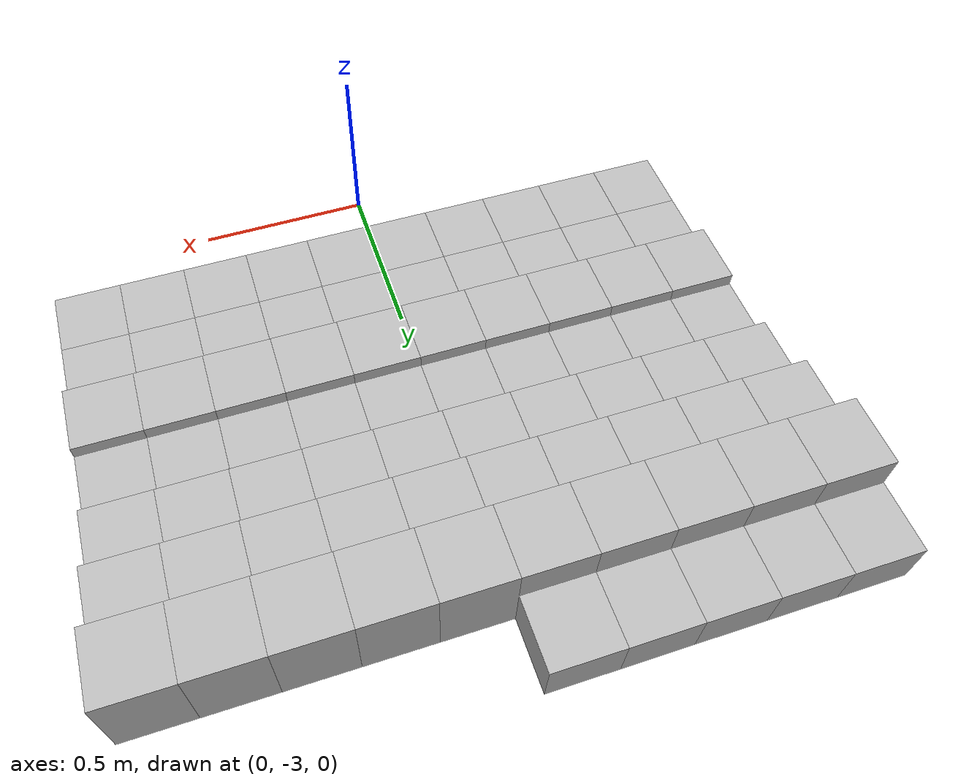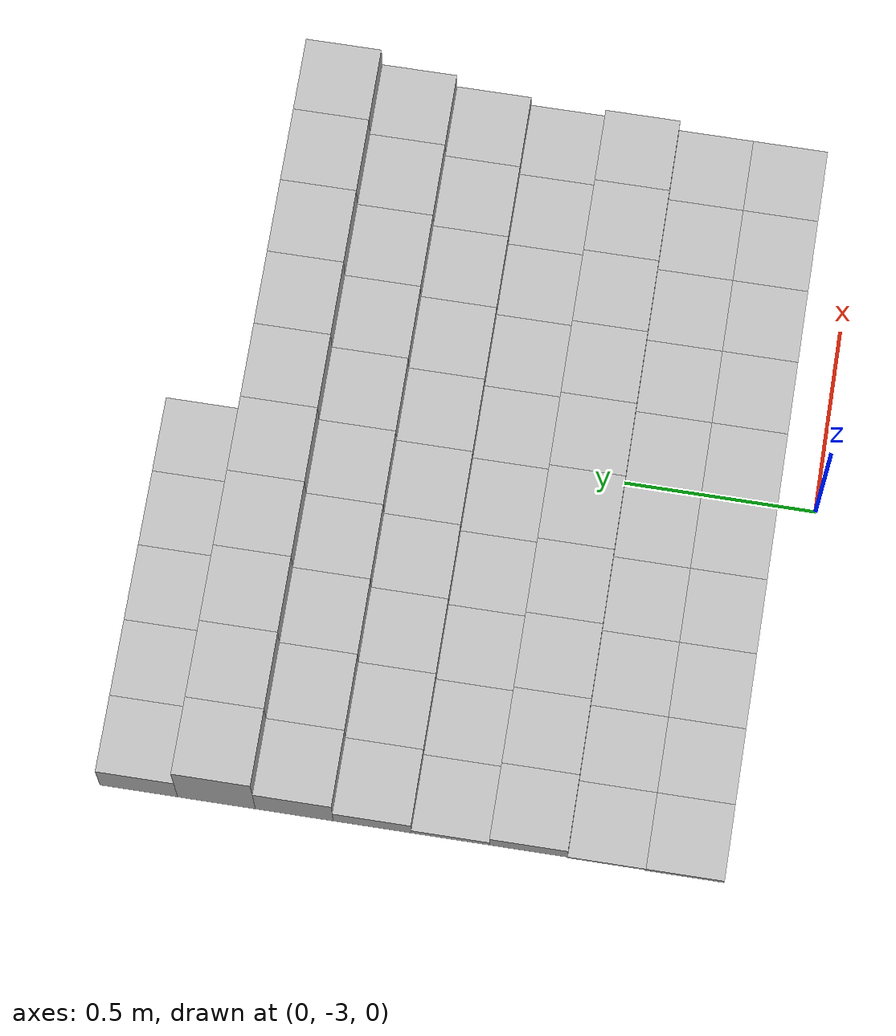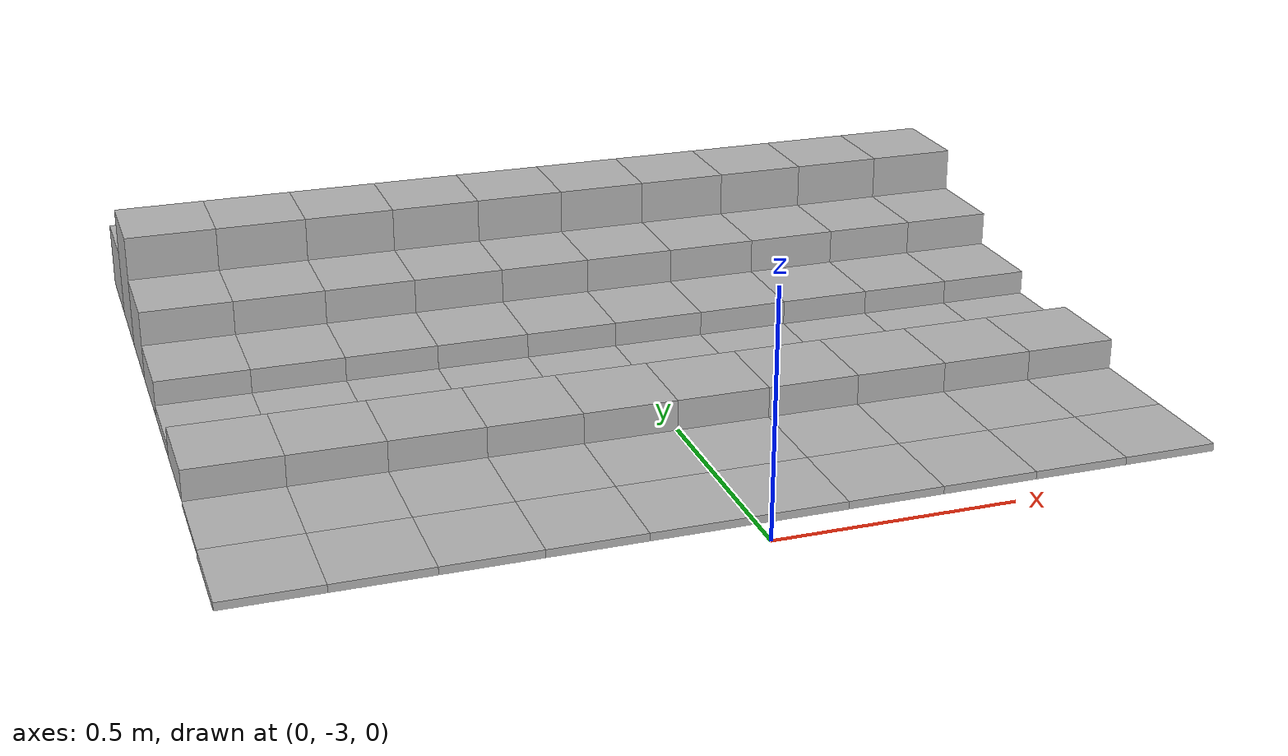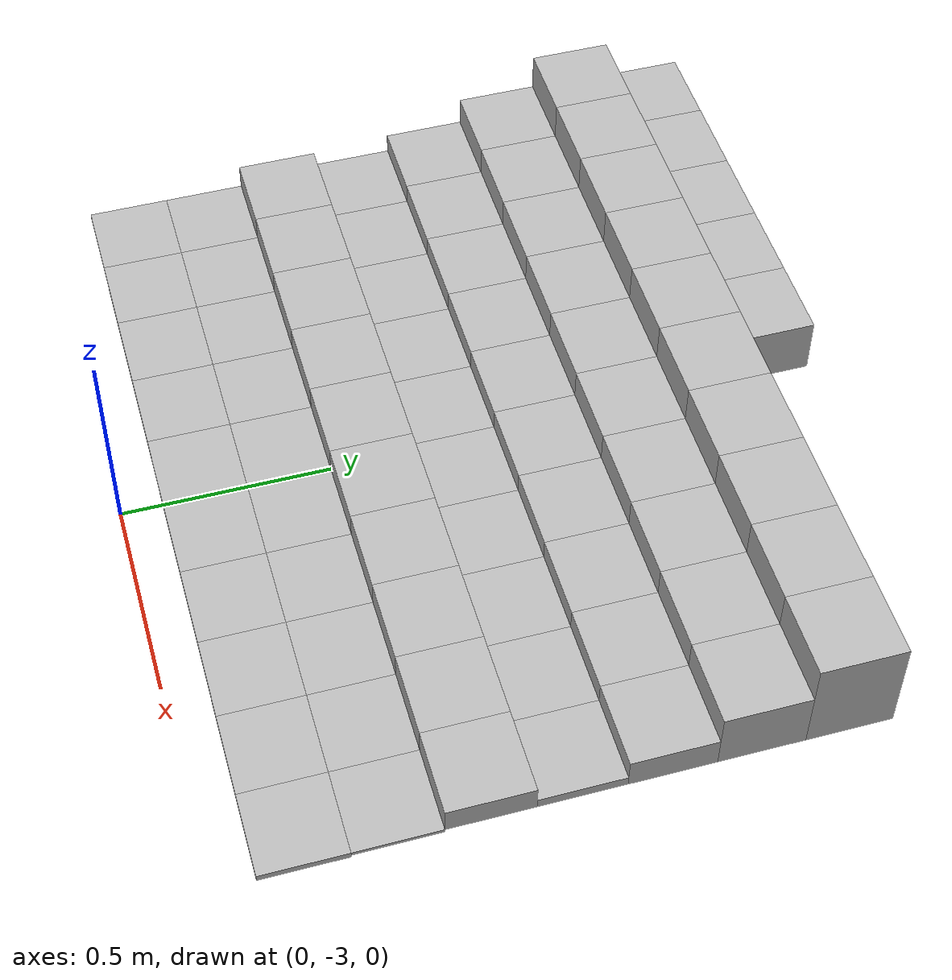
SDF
<sdf version="1.6">
 <model name="Terrain">
  <static>true</static>
  <link name="box_7_0">
   <pose>-0.9 -1.4 0.0736009111206 0 0 0</pose>
   <inertial>
    <mass>1.0</mass>
    <inertia><ixx>0.0</ixx><ixy>0.0</ixy><ixz>0.0</ixz><iyy>0.0</iyy><iyz>0.0</iyz><izz>0.0</izz></inertia>
   </inertial>
   <collision name="collision"><geometry><box><size>0.2 0.2 0.147201822241</size></box></geometry></collision>
   <visual name="visual"><geometry><box><size>0.2 0.2 0.147201822241</size></box></geometry></visual>
  </link>
  <link name="box_7_1">
   <pose>-0.7 -1.4 0.0736009111206 0 0 0</pose>
   <inertial>
    <mass>1.0</mass>
    <inertia><ixx>0.0</ixx><ixy>0.0</ixy><ixz>0.0</ixz><iyy>0.0</iyy><iyz>0.0</iyz><izz>0.0</izz></inertia>
   </inertial>
   <collision name="collision"><geometry><box><size>0.2 0.2 0.147201822241</size></box></geometry></collision>
   <visual name="visual"><geometry><box><size>0.2 0.2 0.147201822241</size></box></geometry></visual>
  </link>
  <link name="box_7_2">
   <pose>-0.5 -1.4 0.0736009111206 0 0 0</pose>
   <inertial>
    <mass>1.0</mass>
    <inertia><ixx>0.0</ixx><ixy>0.0</ixy><ixz>0.0</ixz><iyy>0.0</iyy><iyz>0.0</iyz><izz>0.0</izz></inertia>
   </inertial>
   <collision name="collision"><geometry><box><size>0.2 0.2 0.147201822241</size></box></geometry></collision>
   <visual name="visual"><geometry><box><size>0.2 0.2 0.147201822241</size></box></geometry></visual>
  </link>
  <link name="box_7_3">
   <pose>-0.3 -1.4 0.0736009111206 0 0 0</pose>
   <inertial>
    <mass>1.0</mass>
    <inertia><ixx>0.0</ixx><ixy>0.0</ixy><ixz>0.0</ixz><iyy>0.0</iyy><iyz>0.0</iyz><izz>0.0</izz></inertia>
   </inertial>
   <collision name="collision"><geometry><box><size>0.2 0.2 0.147201822241</size></box></geometry></collision>
   <visual name="visual"><geometry><box><size>0.2 0.2 0.147201822241</size></box></geometry></visual>
  </link>
  <link name="box_7_4">
   <pose>-0.1 -1.4 0.0736009111206 0 0 0</pose>
   <inertial>
    <mass>1.0</mass>
    <inertia><ixx>0.0</ixx><ixy>0.0</ixy><ixz>0.0</ixz><iyy>0.0</iyy><iyz>0.0</iyz><izz>0.0</izz></inertia>
   </inertial>
   <collision name="collision"><geometry><box><size>0.2 0.2 0.147201822241</size></box></geometry></collision>
   <visual name="visual"><geometry><box><size>0.2 0.2 0.147201822241</size></box></geometry></visual>
  </link>
  <link name="box_8_0">
   <pose>-0.9 -1.6 0.126497867398 0 0 0</pose>
   <inertial>
    <mass>1.0</mass>
    <inertia><ixx>0.0</ixx><ixy>0.0</ixy><ixz>0.0</ixz><iyy>0.0</iyy><iyz>0.0</iyz><izz>0.0</izz></inertia>
   </inertial>
   <collision name="collision"><geometry><box><size>0.2 0.2 0.252995734795</size></box></geometry></collision>
   <visual name="visual"><geometry><box><size>0.2 0.2 0.252995734795</size></box></geometry></visual>
  </link>
  <link name="box_8_1">
   <pose>-0.7 -1.6 0.126497867398 0 0 0</pose>
   <inertial>
    <mass>1.0</mass>
    <inertia><ixx>0.0</ixx><ixy>0.0</ixy><ixz>0.0</ixz><iyy>0.0</iyy><iyz>0.0</iyz><izz>0.0</izz></inertia>
   </inertial>
   <collision name="collision"><geometry><box><size>0.2 0.2 0.252995734795</size></box></geometry></collision>
   <visual name="visual"><geometry><box><size>0.2 0.2 0.252995734795</size></box></geometry></visual>
  </link>
  <link name="box_8_2">
   <pose>-0.5 -1.6 0.126497867398 0 0 0</pose>
   <inertial>
    <mass>1.0</mass>
    <inertia><ixx>0.0</ixx><ixy>0.0</ixy><ixz>0.0</ixz><iyy>0.0</iyy><iyz>0.0</iyz><izz>0.0</izz></inertia>
   </inertial>
   <collision name="collision"><geometry><box><size>0.2 0.2 0.252995734795</size></box></geometry></collision>
   <visual name="visual"><geometry><box><size>0.2 0.2 0.252995734795</size></box></geometry></visual>
  </link>
  <link name="box_8_3">
   <pose>-0.3 -1.6 0.126497867398 0 0 0</pose>
   <inertial>
    <mass>1.0</mass>
    <inertia><ixx>0.0</ixx><ixy>0.0</ixy><ixz>0.0</ixz><iyy>0.0</iyy><iyz>0.0</iyz><izz>0.0</izz></inertia>
   </inertial>
   <collision name="collision"><geometry><box><size>0.2 0.2 0.252995734795</size></box></geometry></collision>
   <visual name="visual"><geometry><box><size>0.2 0.2 0.252995734795</size></box></geometry></visual>
  </link>
  <link name="box_8_4">
   <pose>-0.1 -1.6 0.126497867398 0 0 0</pose>
   <inertial>
    <mass>1.0</mass>
    <inertia><ixx>0.0</ixx><ixy>0.0</ixy><ixz>0.0</ixz><iyy>0.0</iyy><iyz>0.0</iyz><izz>0.0</izz></inertia>
   </inertial>
   <collision name="collision"><geometry><box><size>0.2 0.2 0.252995734795</size></box></geometry></collision>
   <visual name="visual"><geometry><box><size>0.2 0.2 0.252995734795</size></box></geometry></visual>
  </link>
  <link name="box_8_5">
   <pose>0.1 -1.6 0.126497867398 0 0 0</pose>
   <inertial>
    <mass>1.0</mass>
    <inertia><ixx>0.0</ixx><ixy>0.0</ixy><ixz>0.0</ixz><iyy>0.0</iyy><iyz>0.0</iyz><izz>0.0</izz></inertia>
   </inertial>
   <collision name="collision"><geometry><box><size>0.2 0.2 0.252995734795</size></box></geometry></collision>
   <visual name="visual"><geometry><box><size>0.2 0.2 0.252995734795</size></box></geometry></visual>
  </link>
  <link name="box_8_6">
   <pose>0.3 -1.6 0.126497867398 0 0 0</pose>
   <inertial>
    <mass>1.0</mass>
    <inertia><ixx>0.0</ixx><ixy>0.0</ixy><ixz>0.0</ixz><iyy>0.0</iyy><iyz>0.0</iyz><izz>0.0</izz></inertia>
   </inertial>
   <collision name="collision"><geometry><box><size>0.2 0.2 0.252995734795</size></box></geometry></collision>
   <visual name="visual"><geometry><box><size>0.2 0.2 0.252995734795</size></box></geometry></visual>
  </link>
  <link name="box_8_7">
   <pose>0.5 -1.6 0.126497867398 0 0 0</pose>
   <inertial>
    <mass>1.0</mass>
    <inertia><ixx>0.0</ixx><ixy>0.0</ixy><ixz>0.0</ixz><iyy>0.0</iyy><iyz>0.0</iyz><izz>0.0</izz></inertia>
   </inertial>
   <collision name="collision"><geometry><box><size>0.2 0.2 0.252995734795</size></box></geometry></collision>
   <visual name="visual"><geometry><box><size>0.2 0.2 0.252995734795</size></box></geometry></visual>
  </link>
  <link name="box_8_8">
   <pose>0.7 -1.6 0.126497867398 0 0 0</pose>
   <inertial>
    <mass>1.0</mass>
    <inertia><ixx>0.0</ixx><ixy>0.0</ixy><ixz>0.0</ixz><iyy>0.0</iyy><iyz>0.0</iyz><izz>0.0</izz></inertia>
   </inertial>
   <collision name="collision"><geometry><box><size>0.2 0.2 0.252995734795</size></box></geometry></collision>
   <visual name="visual"><geometry><box><size>0.2 0.2 0.252995734795</size></box></geometry></visual>
  </link>
  <link name="box_8_9">
   <pose>0.9 -1.6 0.126497867398 0 0 0</pose>
   <inertial>
    <mass>1.0</mass>
    <inertia><ixx>0.0</ixx><ixy>0.0</ixy><ixz>0.0</ixz><iyy>0.0</iyy><iyz>0.0</iyz><izz>0.0</izz></inertia>
   </inertial>
   <collision name="collision"><geometry><box><size>0.2 0.2 0.252995734795</size></box></geometry></collision>
   <visual name="visual"><geometry><box><size>0.2 0.2 0.252995734795</size></box></geometry></visual>
  </link>
  <link name="box_9_0">
   <pose>-0.9 -1.8 0.0776468432398 0 0 0</pose>
   <inertial>
    <mass>1.0</mass>
    <inertia><ixx>0.0</ixx><ixy>0.0</ixy><ixz>0.0</ixz><iyy>0.0</iyy><iyz>0.0</iyz><izz>0.0</izz></inertia>
   </inertial>
   <collision name="collision"><geometry><box><size>0.2 0.2 0.15529368648</size></box></geometry></collision>
   <visual name="visual"><geometry><box><size>0.2 0.2 0.15529368648</size></box></geometry></visual>
  </link>
  <link name="box_9_1">
   <pose>-0.7 -1.8 0.0776468432398 0 0 0</pose>
   <inertial>
    <mass>1.0</mass>
    <inertia><ixx>0.0</ixx><ixy>0.0</ixy><ixz>0.0</ixz><iyy>0.0</iyy><iyz>0.0</iyz><izz>0.0</izz></inertia>
   </inertial>
   <collision name="collision"><geometry><box><size>0.2 0.2 0.15529368648</size></box></geometry></collision>
   <visual name="visual"><geometry><box><size>0.2 0.2 0.15529368648</size></box></geometry></visual>
  </link>
  <link name="box_9_2">
   <pose>-0.5 -1.8 0.0776468432398 0 0 0</pose>
   <inertial>
    <mass>1.0</mass>
    <inertia><ixx>0.0</ixx><ixy>0.0</ixy><ixz>0.0</ixz><iyy>0.0</iyy><iyz>0.0</iyz><izz>0.0</izz></inertia>
   </inertial>
   <collision name="collision"><geometry><box><size>0.2 0.2 0.15529368648</size></box></geometry></collision>
   <visual name="visual"><geometry><box><size>0.2 0.2 0.15529368648</size></box></geometry></visual>
  </link>
  <link name="box_9_3">
   <pose>-0.3 -1.8 0.0776468432398 0 0 0</pose>
   <inertial>
    <mass>1.0</mass>
    <inertia><ixx>0.0</ixx><ixy>0.0</ixy><ixz>0.0</ixz><iyy>0.0</iyy><iyz>0.0</iyz><izz>0.0</izz></inertia>
   </inertial>
   <collision name="collision"><geometry><box><size>0.2 0.2 0.15529368648</size></box></geometry></collision>
   <visual name="visual"><geometry><box><size>0.2 0.2 0.15529368648</size></box></geometry></visual>
  </link>
  <link name="box_9_4">
   <pose>-0.1 -1.8 0.0776468432398 0 0 0</pose>
   <inertial>
    <mass>1.0</mass>
    <inertia><ixx>0.0</ixx><ixy>0.0</ixy><ixz>0.0</ixz><iyy>0.0</iyy><iyz>0.0</iyz><izz>0.0</izz></inertia>
   </inertial>
   <collision name="collision"><geometry><box><size>0.2 0.2 0.15529368648</size></box></geometry></collision>
   <visual name="visual"><geometry><box><size>0.2 0.2 0.15529368648</size></box></geometry></visual>
  </link>
  <link name="box_9_5">
   <pose>0.1 -1.8 0.0776468432398 0 0 0</pose>
   <inertial>
    <mass>1.0</mass>
    <inertia><ixx>0.0</ixx><ixy>0.0</ixy><ixz>0.0</ixz><iyy>0.0</iyy><iyz>0.0</iyz><izz>0.0</izz></inertia>
   </inertial>
   <collision name="collision"><geometry><box><size>0.2 0.2 0.15529368648</size></box></geometry></collision>
   <visual name="visual"><geometry><box><size>0.2 0.2 0.15529368648</size></box></geometry></visual>
  </link>
  <link name="box_9_6">
   <pose>0.3 -1.8 0.0776468432398 0 0 0</pose>
   <inertial>
    <mass>1.0</mass>
    <inertia><ixx>0.0</ixx><ixy>0.0</ixy><ixz>0.0</ixz><iyy>0.0</iyy><iyz>0.0</iyz><izz>0.0</izz></inertia>
   </inertial>
   <collision name="collision"><geometry><box><size>0.2 0.2 0.15529368648</size></box></geometry></collision>
   <visual name="visual"><geometry><box><size>0.2 0.2 0.15529368648</size></box></geometry></visual>
  </link>
  <link name="box_9_7">
   <pose>0.5 -1.8 0.0776468432398 0 0 0</pose>
   <inertial>
    <mass>1.0</mass>
    <inertia><ixx>0.0</ixx><ixy>0.0</ixy><ixz>0.0</ixz><iyy>0.0</iyy><iyz>0.0</iyz><izz>0.0</izz></inertia>
   </inertial>
   <collision name="collision"><geometry><box><size>0.2 0.2 0.15529368648</size></box></geometry></collision>
   <visual name="visual"><geometry><box><size>0.2 0.2 0.15529368648</size></box></geometry></visual>
  </link>
  <link name="box_9_8">
   <pose>0.7 -1.8 0.0776468432398 0 0 0</pose>
   <inertial>
    <mass>1.0</mass>
    <inertia><ixx>0.0</ixx><ixy>0.0</ixy><ixz>0.0</ixz><iyy>0.0</iyy><iyz>0.0</iyz><izz>0.0</izz></inertia>
   </inertial>
   <collision name="collision"><geometry><box><size>0.2 0.2 0.15529368648</size></box></geometry></collision>
   <visual name="visual"><geometry><box><size>0.2 0.2 0.15529368648</size></box></geometry></visual>
  </link>
  <link name="box_9_9">
   <pose>0.9 -1.8 0.0776468432398 0 0 0</pose>
   <inertial>
    <mass>1.0</mass>
    <inertia><ixx>0.0</ixx><ixy>0.0</ixy><ixz>0.0</ixz><iyy>0.0</iyy><iyz>0.0</iyz><izz>0.0</izz></inertia>
   </inertial>
   <collision name="collision"><geometry><box><size>0.2 0.2 0.15529368648</size></box></geometry></collision>
   <visual name="visual"><geometry><box><size>0.2 0.2 0.15529368648</size></box></geometry></visual>
  </link>
  <link name="box_10_0">
   <pose>-0.9 -2.0 0.0395009255337 0 0 0</pose>
   <inertial>
    <mass>1.0</mass>
    <inertia><ixx>0.0</ixx><ixy>0.0</ixy><ixz>0.0</ixz><iyy>0.0</iyy><iyz>0.0</iyz><izz>0.0</izz></inertia>
   </inertial>
   <collision name="collision"><geometry><box><size>0.2 0.2 0.0790018510675</size></box></geometry></collision>
   <visual name="visual"><geometry><box><size>0.2 0.2 0.0790018510675</size></box></geometry></visual>
  </link>
  <link name="box_10_1">
   <pose>-0.7 -2.0 0.0395009255337 0 0 0</pose>
   <inertial>
    <mass>1.0</mass>
    <inertia><ixx>0.0</ixx><ixy>0.0</ixy><ixz>0.0</ixz><iyy>0.0</iyy><iyz>0.0</iyz><izz>0.0</izz></inertia>
   </inertial>
   <collision name="collision"><geometry><box><size>0.2 0.2 0.0790018510675</size></box></geometry></collision>
   <visual name="visual"><geometry><box><size>0.2 0.2 0.0790018510675</size></box></geometry></visual>
  </link>
  <link name="box_10_2">
   <pose>-0.5 -2.0 0.0395009255337 0 0 0</pose>
   <inertial>
    <mass>1.0</mass>
    <inertia><ixx>0.0</ixx><ixy>0.0</ixy><ixz>0.0</ixz><iyy>0.0</iyy><iyz>0.0</iyz><izz>0.0</izz></inertia>
   </inertial>
   <collision name="collision"><geometry><box><size>0.2 0.2 0.0790018510675</size></box></geometry></collision>
   <visual name="visual"><geometry><box><size>0.2 0.2 0.0790018510675</size></box></geometry></visual>
  </link>
  <link name="box_10_3">
   <pose>-0.3 -2.0 0.0395009255337 0 0 0</pose>
   <inertial>
    <mass>1.0</mass>
    <inertia><ixx>0.0</ixx><ixy>0.0</ixy><ixz>0.0</ixz><iyy>0.0</iyy><iyz>0.0</iyz><izz>0.0</izz></inertia>
   </inertial>
   <collision name="collision"><geometry><box><size>0.2 0.2 0.0790018510675</size></box></geometry></collision>
   <visual name="visual"><geometry><box><size>0.2 0.2 0.0790018510675</size></box></geometry></visual>
  </link>
  <link name="box_10_4">
   <pose>-0.1 -2.0 0.0395009255337 0 0 0</pose>
   <inertial>
    <mass>1.0</mass>
    <inertia><ixx>0.0</ixx><ixy>0.0</ixy><ixz>0.0</ixz><iyy>0.0</iyy><iyz>0.0</iyz><izz>0.0</izz></inertia>
   </inertial>
   <collision name="collision"><geometry><box><size>0.2 0.2 0.0790018510675</size></box></geometry></collision>
   <visual name="visual"><geometry><box><size>0.2 0.2 0.0790018510675</size></box></geometry></visual>
  </link>
  <link name="box_10_5">
   <pose>0.1 -2.0 0.0395009255337 0 0 0</pose>
   <inertial>
    <mass>1.0</mass>
    <inertia><ixx>0.0</ixx><ixy>0.0</ixy><ixz>0.0</ixz><iyy>0.0</iyy><iyz>0.0</iyz><izz>0.0</izz></inertia>
   </inertial>
   <collision name="collision"><geometry><box><size>0.2 0.2 0.0790018510675</size></box></geometry></collision>
   <visual name="visual"><geometry><box><size>0.2 0.2 0.0790018510675</size></box></geometry></visual>
  </link>
  <link name="box_10_6">
   <pose>0.3 -2.0 0.0395009255337 0 0 0</pose>
   <inertial>
    <mass>1.0</mass>
    <inertia><ixx>0.0</ixx><ixy>0.0</ixy><ixz>0.0</ixz><iyy>0.0</iyy><iyz>0.0</iyz><izz>0.0</izz></inertia>
   </inertial>
   <collision name="collision"><geometry><box><size>0.2 0.2 0.0790018510675</size></box></geometry></collision>
   <visual name="visual"><geometry><box><size>0.2 0.2 0.0790018510675</size></box></geometry></visual>
  </link>
  <link name="box_10_7">
   <pose>0.5 -2.0 0.0395009255337 0 0 0</pose>
   <inertial>
    <mass>1.0</mass>
    <inertia><ixx>0.0</ixx><ixy>0.0</ixy><ixz>0.0</ixz><iyy>0.0</iyy><iyz>0.0</iyz><izz>0.0</izz></inertia>
   </inertial>
   <collision name="collision"><geometry><box><size>0.2 0.2 0.0790018510675</size></box></geometry></collision>
   <visual name="visual"><geometry><box><size>0.2 0.2 0.0790018510675</size></box></geometry></visual>
  </link>
  <link name="box_10_8">
   <pose>0.7 -2.0 0.0395009255337 0 0 0</pose>
   <inertial>
    <mass>1.0</mass>
    <inertia><ixx>0.0</ixx><ixy>0.0</ixy><ixz>0.0</ixz><iyy>0.0</iyy><iyz>0.0</iyz><izz>0.0</izz></inertia>
   </inertial>
   <collision name="collision"><geometry><box><size>0.2 0.2 0.0790018510675</size></box></geometry></collision>
   <visual name="visual"><geometry><box><size>0.2 0.2 0.0790018510675</size></box></geometry></visual>
  </link>
  <link name="box_10_9">
   <pose>0.9 -2.0 0.0395009255337 0 0 0</pose>
   <inertial>
    <mass>1.0</mass>
    <inertia><ixx>0.0</ixx><ixy>0.0</ixy><ixz>0.0</ixz><iyy>0.0</iyy><iyz>0.0</iyz><izz>0.0</izz></inertia>
   </inertial>
   <collision name="collision"><geometry><box><size>0.2 0.2 0.0790018510675</size></box></geometry></collision>
   <visual name="visual"><geometry><box><size>0.2 0.2 0.0790018510675</size></box></geometry></visual>
  </link>
  <link name="box_11_0">
   <pose>-0.9 -2.2 0.0128418114471 0 0 0</pose>
   <inertial>
    <mass>1.0</mass>
    <inertia><ixx>0.0</ixx><ixy>0.0</ixy><ixz>0.0</ixz><iyy>0.0</iyy><iyz>0.0</iyz><izz>0.0</izz></inertia>
   </inertial>
   <collision name="collision"><geometry><box><size>0.2 0.2 0.0256836228942</size></box></geometry></collision>
   <visual name="visual"><geometry><box><size>0.2 0.2 0.0256836228942</size></box></geometry></visual>
  </link>
  <link name="box_11_1">
   <pose>-0.7 -2.2 0.0128418114471 0 0 0</pose>
   <inertial>
    <mass>1.0</mass>
    <inertia><ixx>0.0</ixx><ixy>0.0</ixy><ixz>0.0</ixz><iyy>0.0</iyy><iyz>0.0</iyz><izz>0.0</izz></inertia>
   </inertial>
   <collision name="collision"><geometry><box><size>0.2 0.2 0.0256836228942</size></box></geometry></collision>
   <visual name="visual"><geometry><box><size>0.2 0.2 0.0256836228942</size></box></geometry></visual>
  </link>
  <link name="box_11_2">
   <pose>-0.5 -2.2 0.0128418114471 0 0 0</pose>
   <inertial>
    <mass>1.0</mass>
    <inertia><ixx>0.0</ixx><ixy>0.0</ixy><ixz>0.0</ixz><iyy>0.0</iyy><iyz>0.0</iyz><izz>0.0</izz></inertia>
   </inertial>
   <collision name="collision"><geometry><box><size>0.2 0.2 0.0256836228942</size></box></geometry></collision>
   <visual name="visual"><geometry><box><size>0.2 0.2 0.0256836228942</size></box></geometry></visual>
  </link>
  <link name="box_11_3">
   <pose>-0.3 -2.2 0.0128418114471 0 0 0</pose>
   <inertial>
    <mass>1.0</mass>
    <inertia><ixx>0.0</ixx><ixy>0.0</ixy><ixz>0.0</ixz><iyy>0.0</iyy><iyz>0.0</iyz><izz>0.0</izz></inertia>
   </inertial>
   <collision name="collision"><geometry><box><size>0.2 0.2 0.0256836228942</size></box></geometry></collision>
   <visual name="visual"><geometry><box><size>0.2 0.2 0.0256836228942</size></box></geometry></visual>
  </link>
  <link name="box_11_4">
   <pose>-0.1 -2.2 0.0128418114471 0 0 0</pose>
   <inertial>
    <mass>1.0</mass>
    <inertia><ixx>0.0</ixx><ixy>0.0</ixy><ixz>0.0</ixz><iyy>0.0</iyy><iyz>0.0</iyz><izz>0.0</izz></inertia>
   </inertial>
   <collision name="collision"><geometry><box><size>0.2 0.2 0.0256836228942</size></box></geometry></collision>
   <visual name="visual"><geometry><box><size>0.2 0.2 0.0256836228942</size></box></geometry></visual>
  </link>
  <link name="box_11_5">
   <pose>0.1 -2.2 0.0128418114471 0 0 0</pose>
   <inertial>
    <mass>1.0</mass>
    <inertia><ixx>0.0</ixx><ixy>0.0</ixy><ixz>0.0</ixz><iyy>0.0</iyy><iyz>0.0</iyz><izz>0.0</izz></inertia>
   </inertial>
   <collision name="collision"><geometry><box><size>0.2 0.2 0.0256836228942</size></box></geometry></collision>
   <visual name="visual"><geometry><box><size>0.2 0.2 0.0256836228942</size></box></geometry></visual>
  </link>
  <link name="box_11_6">
   <pose>0.3 -2.2 0.0128418114471 0 0 0</pose>
   <inertial>
    <mass>1.0</mass>
    <inertia><ixx>0.0</ixx><ixy>0.0</ixy><ixz>0.0</ixz><iyy>0.0</iyy><iyz>0.0</iyz><izz>0.0</izz></inertia>
   </inertial>
   <collision name="collision"><geometry><box><size>0.2 0.2 0.0256836228942</size></box></geometry></collision>
   <visual name="visual"><geometry><box><size>0.2 0.2 0.0256836228942</size></box></geometry></visual>
  </link>
  <link name="box_11_7">
   <pose>0.5 -2.2 0.0128418114471 0 0 0</pose>
   <inertial>
    <mass>1.0</mass>
    <inertia><ixx>0.0</ixx><ixy>0.0</ixy><ixz>0.0</ixz><iyy>0.0</iyy><iyz>0.0</iyz><izz>0.0</izz></inertia>
   </inertial>
   <collision name="collision"><geometry><box><size>0.2 0.2 0.0256836228942</size></box></geometry></collision>
   <visual name="visual"><geometry><box><size>0.2 0.2 0.0256836228942</size></box></geometry></visual>
  </link>
  <link name="box_11_8">
   <pose>0.7 -2.2 0.0128418114471 0 0 0</pose>
   <inertial>
    <mass>1.0</mass>
    <inertia><ixx>0.0</ixx><ixy>0.0</ixy><ixz>0.0</ixz><iyy>0.0</iyy><iyz>0.0</iyz><izz>0.0</izz></inertia>
   </inertial>
   <collision name="collision"><geometry><box><size>0.2 0.2 0.0256836228942</size></box></geometry></collision>
   <visual name="visual"><geometry><box><size>0.2 0.2 0.0256836228942</size></box></geometry></visual>
  </link>
  <link name="box_11_9">
   <pose>0.9 -2.2 0.0128418114471 0 0 0</pose>
   <inertial>
    <mass>1.0</mass>
    <inertia><ixx>0.0</ixx><ixy>0.0</ixy><ixz>0.0</ixz><iyy>0.0</iyy><iyz>0.0</iyz><izz>0.0</izz></inertia>
   </inertial>
   <collision name="collision"><geometry><box><size>0.2 0.2 0.0256836228942</size></box></geometry></collision>
   <visual name="visual"><geometry><box><size>0.2 0.2 0.0256836228942</size></box></geometry></visual>
  </link>
  <link name="box_12_0">
   <pose>-0.9 -2.4 0.0330639280937 0 0 0</pose>
   <inertial>
    <mass>1.0</mass>
    <inertia><ixx>0.0</ixx><ixy>0.0</ixy><ixz>0.0</ixz><iyy>0.0</iyy><iyz>0.0</iyz><izz>0.0</izz></inertia>
   </inertial>
   <collision name="collision"><geometry><box><size>0.2 0.2 0.0661278561874</size></box></geometry></collision>
   <visual name="visual"><geometry><box><size>0.2 0.2 0.0661278561874</size></box></geometry></visual>
  </link>
  <link name="box_12_1">
   <pose>-0.7 -2.4 0.0330639280937 0 0 0</pose>
   <inertial>
    <mass>1.0</mass>
    <inertia><ixx>0.0</ixx><ixy>0.0</ixy><ixz>0.0</ixz><iyy>0.0</iyy><iyz>0.0</iyz><izz>0.0</izz></inertia>
   </inertial>
   <collision name="collision"><geometry><box><size>0.2 0.2 0.0661278561874</size></box></geometry></collision>
   <visual name="visual"><geometry><box><size>0.2 0.2 0.0661278561874</size></box></geometry></visual>
  </link>
  <link name="box_12_2">
   <pose>-0.5 -2.4 0.0330639280937 0 0 0</pose>
   <inertial>
    <mass>1.0</mass>
    <inertia><ixx>0.0</ixx><ixy>0.0</ixy><ixz>0.0</ixz><iyy>0.0</iyy><iyz>0.0</iyz><izz>0.0</izz></inertia>
   </inertial>
   <collision name="collision"><geometry><box><size>0.2 0.2 0.0661278561874</size></box></geometry></collision>
   <visual name="visual"><geometry><box><size>0.2 0.2 0.0661278561874</size></box></geometry></visual>
  </link>
  <link name="box_12_3">
   <pose>-0.3 -2.4 0.0330639280937 0 0 0</pose>
   <inertial>
    <mass>1.0</mass>
    <inertia><ixx>0.0</ixx><ixy>0.0</ixy><ixz>0.0</ixz><iyy>0.0</iyy><iyz>0.0</iyz><izz>0.0</izz></inertia>
   </inertial>
   <collision name="collision"><geometry><box><size>0.2 0.2 0.0661278561874</size></box></geometry></collision>
   <visual name="visual"><geometry><box><size>0.2 0.2 0.0661278561874</size></box></geometry></visual>
  </link>
  <link name="box_12_4">
   <pose>-0.1 -2.4 0.0330639280937 0 0 0</pose>
   <inertial>
    <mass>1.0</mass>
    <inertia><ixx>0.0</ixx><ixy>0.0</ixy><ixz>0.0</ixz><iyy>0.0</iyy><iyz>0.0</iyz><izz>0.0</izz></inertia>
   </inertial>
   <collision name="collision"><geometry><box><size>0.2 0.2 0.0661278561874</size></box></geometry></collision>
   <visual name="visual"><geometry><box><size>0.2 0.2 0.0661278561874</size></box></geometry></visual>
  </link>
  <link name="box_12_5">
   <pose>0.1 -2.4 0.0330639280937 0 0 0</pose>
   <inertial>
    <mass>1.0</mass>
    <inertia><ixx>0.0</ixx><ixy>0.0</ixy><ixz>0.0</ixz><iyy>0.0</iyy><iyz>0.0</iyz><izz>0.0</izz></inertia>
   </inertial>
   <collision name="collision"><geometry><box><size>0.2 0.2 0.0661278561874</size></box></geometry></collision>
   <visual name="visual"><geometry><box><size>0.2 0.2 0.0661278561874</size></box></geometry></visual>
  </link>
  <link name="box_12_6">
   <pose>0.3 -2.4 0.0330639280937 0 0 0</pose>
   <inertial>
    <mass>1.0</mass>
    <inertia><ixx>0.0</ixx><ixy>0.0</ixy><ixz>0.0</ixz><iyy>0.0</iyy><iyz>0.0</iyz><izz>0.0</izz></inertia>
   </inertial>
   <collision name="collision"><geometry><box><size>0.2 0.2 0.0661278561874</size></box></geometry></collision>
   <visual name="visual"><geometry><box><size>0.2 0.2 0.0661278561874</size></box></geometry></visual>
  </link>
  <link name="box_12_7">
   <pose>0.5 -2.4 0.0330639280937 0 0 0</pose>
   <inertial>
    <mass>1.0</mass>
    <inertia><ixx>0.0</ixx><ixy>0.0</ixy><ixz>0.0</ixz><iyy>0.0</iyy><iyz>0.0</iyz><izz>0.0</izz></inertia>
   </inertial>
   <collision name="collision"><geometry><box><size>0.2 0.2 0.0661278561874</size></box></geometry></collision>
   <visual name="visual"><geometry><box><size>0.2 0.2 0.0661278561874</size></box></geometry></visual>
  </link>
  <link name="box_12_8">
   <pose>0.7 -2.4 0.0330639280937 0 0 0</pose>
   <inertial>
    <mass>1.0</mass>
    <inertia><ixx>0.0</ixx><ixy>0.0</ixy><ixz>0.0</ixz><iyy>0.0</iyy><iyz>0.0</iyz><izz>0.0</izz></inertia>
   </inertial>
   <collision name="collision"><geometry><box><size>0.2 0.2 0.0661278561874</size></box></geometry></collision>
   <visual name="visual"><geometry><box><size>0.2 0.2 0.0661278561874</size></box></geometry></visual>
  </link>
  <link name="box_12_9">
   <pose>0.9 -2.4 0.0330639280937 0 0 0</pose>
   <inertial>
    <mass>1.0</mass>
    <inertia><ixx>0.0</ixx><ixy>0.0</ixy><ixz>0.0</ixz><iyy>0.0</iyy><iyz>0.0</iyz><izz>0.0</izz></inertia>
   </inertial>
   <collision name="collision"><geometry><box><size>0.2 0.2 0.0661278561874</size></box></geometry></collision>
   <visual name="visual"><geometry><box><size>0.2 0.2 0.0661278561874</size></box></geometry></visual>
  </link>
  <link name="box_13_0">
   <pose>-0.9 -2.6 -0.0044575500927 0 0 0</pose>
   <inertial>
    <mass>1.0</mass>
    <inertia><ixx>0.0</ixx><ixy>0.0</ixy><ixz>0.0</ixz><iyy>0.0</iyy><iyz>0.0</iyz><izz>0.0</izz></inertia>
   </inertial>
   <collision name="collision"><geometry><box><size>0.2 0.2 -0.00891510018539</size></box></geometry></collision>
   <visual name="visual"><geometry><box><size>0.2 0.2 -0.00891510018539</size></box></geometry></visual>
  </link>
  <link name="box_13_1">
   <pose>-0.7 -2.6 -0.0044575500927 0 0 0</pose>
   <inertial>
    <mass>1.0</mass>
    <inertia><ixx>0.0</ixx><ixy>0.0</ixy><ixz>0.0</ixz><iyy>0.0</iyy><iyz>0.0</iyz><izz>0.0</izz></inertia>
   </inertial>
   <collision name="collision"><geometry><box><size>0.2 0.2 -0.00891510018539</size></box></geometry></collision>
   <visual name="visual"><geometry><box><size>0.2 0.2 -0.00891510018539</size></box></geometry></visual>
  </link>
  <link name="box_13_2">
   <pose>-0.5 -2.6 -0.0044575500927 0 0 0</pose>
   <inertial>
    <mass>1.0</mass>
    <inertia><ixx>0.0</ixx><ixy>0.0</ixy><ixz>0.0</ixz><iyy>0.0</iyy><iyz>0.0</iyz><izz>0.0</izz></inertia>
   </inertial>
   <collision name="collision"><geometry><box><size>0.2 0.2 -0.00891510018539</size></box></geometry></collision>
   <visual name="visual"><geometry><box><size>0.2 0.2 -0.00891510018539</size></box></geometry></visual>
  </link>
  <link name="box_13_3">
   <pose>-0.3 -2.6 -0.0044575500927 0 0 0</pose>
   <inertial>
    <mass>1.0</mass>
    <inertia><ixx>0.0</ixx><ixy>0.0</ixy><ixz>0.0</ixz><iyy>0.0</iyy><iyz>0.0</iyz><izz>0.0</izz></inertia>
   </inertial>
   <collision name="collision"><geometry><box><size>0.2 0.2 -0.00891510018539</size></box></geometry></collision>
   <visual name="visual"><geometry><box><size>0.2 0.2 -0.00891510018539</size></box></geometry></visual>
  </link>
  <link name="box_13_4">
   <pose>-0.1 -2.6 -0.0044575500927 0 0 0</pose>
   <inertial>
    <mass>1.0</mass>
    <inertia><ixx>0.0</ixx><ixy>0.0</ixy><ixz>0.0</ixz><iyy>0.0</iyy><iyz>0.0</iyz><izz>0.0</izz></inertia>
   </inertial>
   <collision name="collision"><geometry><box><size>0.2 0.2 -0.00891510018539</size></box></geometry></collision>
   <visual name="visual"><geometry><box><size>0.2 0.2 -0.00891510018539</size></box></geometry></visual>
  </link>
  <link name="box_13_5">
   <pose>0.1 -2.6 -0.0044575500927 0 0 0</pose>
   <inertial>
    <mass>1.0</mass>
    <inertia><ixx>0.0</ixx><ixy>0.0</ixy><ixz>0.0</ixz><iyy>0.0</iyy><iyz>0.0</iyz><izz>0.0</izz></inertia>
   </inertial>
   <collision name="collision"><geometry><box><size>0.2 0.2 -0.00891510018539</size></box></geometry></collision>
   <visual name="visual"><geometry><box><size>0.2 0.2 -0.00891510018539</size></box></geometry></visual>
  </link>
  <link name="box_13_6">
   <pose>0.3 -2.6 -0.0044575500927 0 0 0</pose>
   <inertial>
    <mass>1.0</mass>
    <inertia><ixx>0.0</ixx><ixy>0.0</ixy><ixz>0.0</ixz><iyy>0.0</iyy><iyz>0.0</iyz><izz>0.0</izz></inertia>
   </inertial>
   <collision name="collision"><geometry><box><size>0.2 0.2 -0.00891510018539</size></box></geometry></collision>
   <visual name="visual"><geometry><box><size>0.2 0.2 -0.00891510018539</size></box></geometry></visual>
  </link>
  <link name="box_13_7">
   <pose>0.5 -2.6 -0.0044575500927 0 0 0</pose>
   <inertial>
    <mass>1.0</mass>
    <inertia><ixx>0.0</ixx><ixy>0.0</ixy><ixz>0.0</ixz><iyy>0.0</iyy><iyz>0.0</iyz><izz>0.0</izz></inertia>
   </inertial>
   <collision name="collision"><geometry><box><size>0.2 0.2 -0.00891510018539</size></box></geometry></collision>
   <visual name="visual"><geometry><box><size>0.2 0.2 -0.00891510018539</size></box></geometry></visual>
  </link>
  <link name="box_13_8">
   <pose>0.7 -2.6 -0.0044575500927 0 0 0</pose>
   <inertial>
    <mass>1.0</mass>
    <inertia><ixx>0.0</ixx><ixy>0.0</ixy><ixz>0.0</ixz><iyy>0.0</iyy><iyz>0.0</iyz><izz>0.0</izz></inertia>
   </inertial>
   <collision name="collision"><geometry><box><size>0.2 0.2 -0.00891510018539</size></box></geometry></collision>
   <visual name="visual"><geometry><box><size>0.2 0.2 -0.00891510018539</size></box></geometry></visual>
  </link>
  <link name="box_13_9">
   <pose>0.9 -2.6 -0.0044575500927 0 0 0</pose>
   <inertial>
    <mass>1.0</mass>
    <inertia><ixx>0.0</ixx><ixy>0.0</ixy><ixz>0.0</ixz><iyy>0.0</iyy><iyz>0.0</iyz><izz>0.0</izz></inertia>
   </inertial>
   <collision name="collision"><geometry><box><size>0.2 0.2 -0.00891510018539</size></box></geometry></collision>
   <visual name="visual"><geometry><box><size>0.2 0.2 -0.00891510018539</size></box></geometry></visual>
  </link>
  <link name="box_14_0">
   <pose>-0.9 -2.8 -0.00810667816475 0 0 0</pose>
   <inertial>
    <mass>1.0</mass>
    <inertia><ixx>0.0</ixx><ixy>0.0</ixy><ixz>0.0</ixz><iyy>0.0</iyy><iyz>0.0</iyz><izz>0.0</izz></inertia>
   </inertial>
   <collision name="collision"><geometry><box><size>0.2 0.2 -0.0162133563295</size></box></geometry></collision>
   <visual name="visual"><geometry><box><size>0.2 0.2 -0.0162133563295</size></box></geometry></visual>
  </link>
  <link name="box_14_1">
   <pose>-0.7 -2.8 -0.00810667816475 0 0 0</pose>
   <inertial>
    <mass>1.0</mass>
    <inertia><ixx>0.0</ixx><ixy>0.0</ixy><ixz>0.0</ixz><iyy>0.0</iyy><iyz>0.0</iyz><izz>0.0</izz></inertia>
   </inertial>
   <collision name="collision"><geometry><box><size>0.2 0.2 -0.0162133563295</size></box></geometry></collision>
   <visual name="visual"><geometry><box><size>0.2 0.2 -0.0162133563295</size></box></geometry></visual>
  </link>
  <link name="box_14_2">
   <pose>-0.5 -2.8 -0.00810667816475 0 0 0</pose>
   <inertial>
    <mass>1.0</mass>
    <inertia><ixx>0.0</ixx><ixy>0.0</ixy><ixz>0.0</ixz><iyy>0.0</iyy><iyz>0.0</iyz><izz>0.0</izz></inertia>
   </inertial>
   <collision name="collision"><geometry><box><size>0.2 0.2 -0.0162133563295</size></box></geometry></collision>
   <visual name="visual"><geometry><box><size>0.2 0.2 -0.0162133563295</size></box></geometry></visual>
  </link>
  <link name="box_14_3">
   <pose>-0.3 -2.8 -0.00810667816475 0 0 0</pose>
   <inertial>
    <mass>1.0</mass>
    <inertia><ixx>0.0</ixx><ixy>0.0</ixy><ixz>0.0</ixz><iyy>0.0</iyy><iyz>0.0</iyz><izz>0.0</izz></inertia>
   </inertial>
   <collision name="collision"><geometry><box><size>0.2 0.2 -0.0162133563295</size></box></geometry></collision>
   <visual name="visual"><geometry><box><size>0.2 0.2 -0.0162133563295</size></box></geometry></visual>
  </link>
  <link name="box_14_4">
   <pose>-0.1 -2.8 -0.00810667816475 0 0 0</pose>
   <inertial>
    <mass>1.0</mass>
    <inertia><ixx>0.0</ixx><ixy>0.0</ixy><ixz>0.0</ixz><iyy>0.0</iyy><iyz>0.0</iyz><izz>0.0</izz></inertia>
   </inertial>
   <collision name="collision"><geometry><box><size>0.2 0.2 -0.0162133563295</size></box></geometry></collision>
   <visual name="visual"><geometry><box><size>0.2 0.2 -0.0162133563295</size></box></geometry></visual>
  </link>
  <link name="box_14_5">
   <pose>0.1 -2.8 -0.00810667816475 0 0 0</pose>
   <inertial>
    <mass>1.0</mass>
    <inertia><ixx>0.0</ixx><ixy>0.0</ixy><ixz>0.0</ixz><iyy>0.0</iyy><iyz>0.0</iyz><izz>0.0</izz></inertia>
   </inertial>
   <collision name="collision"><geometry><box><size>0.2 0.2 -0.0162133563295</size></box></geometry></collision>
   <visual name="visual"><geometry><box><size>0.2 0.2 -0.0162133563295</size></box></geometry></visual>
  </link>
  <link name="box_14_6">
   <pose>0.3 -2.8 -0.00810667816475 0 0 0</pose>
   <inertial>
    <mass>1.0</mass>
    <inertia><ixx>0.0</ixx><ixy>0.0</ixy><ixz>0.0</ixz><iyy>0.0</iyy><iyz>0.0</iyz><izz>0.0</izz></inertia>
   </inertial>
   <collision name="collision"><geometry><box><size>0.2 0.2 -0.0162133563295</size></box></geometry></collision>
   <visual name="visual"><geometry><box><size>0.2 0.2 -0.0162133563295</size></box></geometry></visual>
  </link>
  <link name="box_14_7">
   <pose>0.5 -2.8 -0.00810667816475 0 0 0</pose>
   <inertial>
    <mass>1.0</mass>
    <inertia><ixx>0.0</ixx><ixy>0.0</ixy><ixz>0.0</ixz><iyy>0.0</iyy><iyz>0.0</iyz><izz>0.0</izz></inertia>
   </inertial>
   <collision name="collision"><geometry><box><size>0.2 0.2 -0.0162133563295</size></box></geometry></collision>
   <visual name="visual"><geometry><box><size>0.2 0.2 -0.0162133563295</size></box></geometry></visual>
  </link>
  <link name="box_14_8">
   <pose>0.7 -2.8 -0.00810667816475 0 0 0</pose>
   <inertial>
    <mass>1.0</mass>
    <inertia><ixx>0.0</ixx><ixy>0.0</ixy><ixz>0.0</ixz><iyy>0.0</iyy><iyz>0.0</iyz><izz>0.0</izz></inertia>
   </inertial>
   <collision name="collision"><geometry><box><size>0.2 0.2 -0.0162133563295</size></box></geometry></collision>
   <visual name="visual"><geometry><box><size>0.2 0.2 -0.0162133563295</size></box></geometry></visual>
  </link>
  <link name="box_14_9">
   <pose>0.9 -2.8 -0.00810667816475 0 0 0</pose>
   <inertial>
    <mass>1.0</mass>
    <inertia><ixx>0.0</ixx><ixy>0.0</ixy><ixz>0.0</ixz><iyy>0.0</iyy><iyz>0.0</iyz><izz>0.0</izz></inertia>
   </inertial>
   <collision name="collision"><geometry><box><size>0.2 0.2 -0.0162133563295</size></box></geometry></collision>
   <visual name="visual"><geometry><box><size>0.2 0.2 -0.0162133563295</size></box></geometry></visual>
  </link>
 </model>
</sdf>
